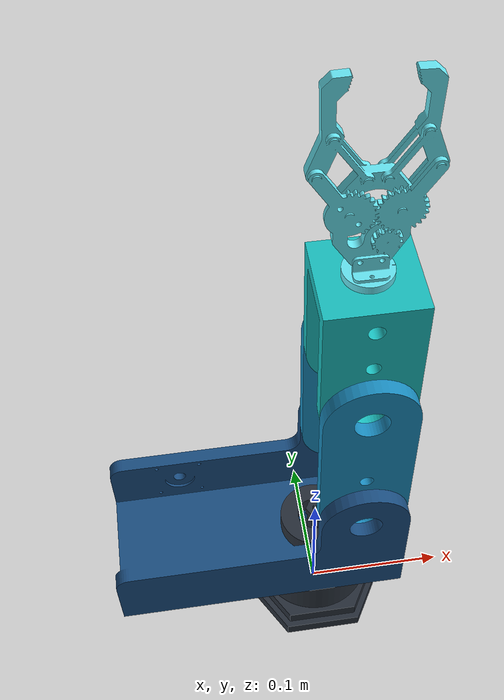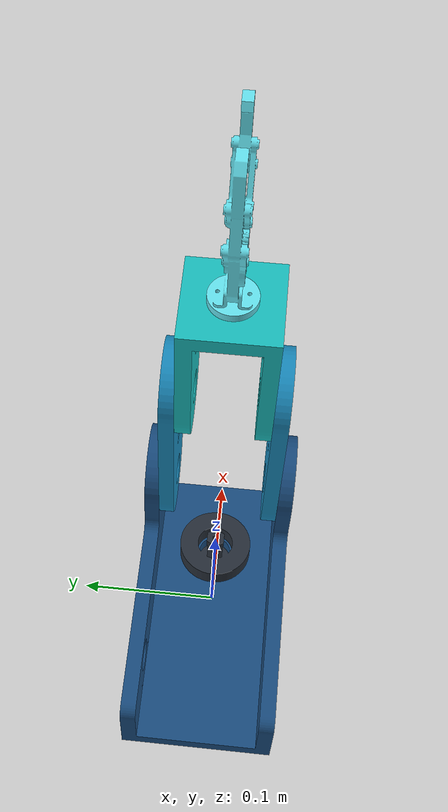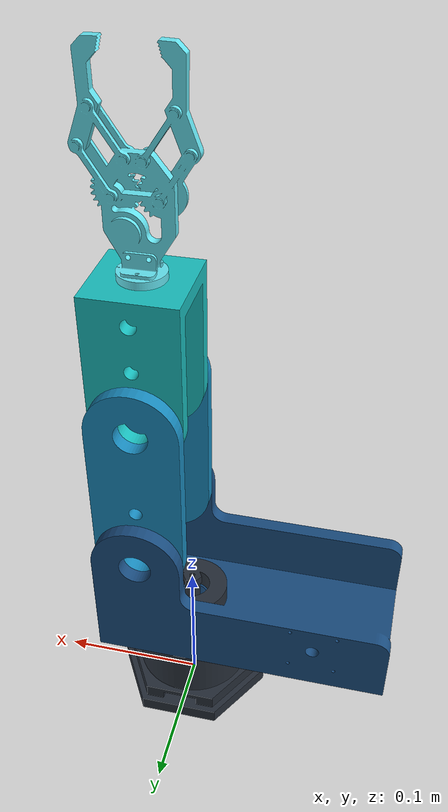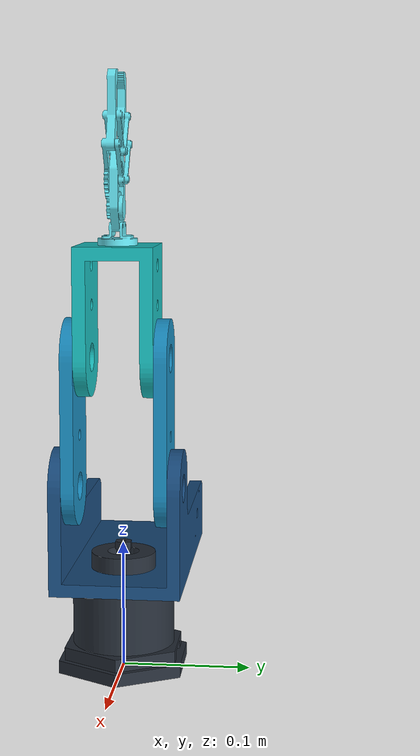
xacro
<?xml version="1.0"?>
<robot xmlns:xacro="http://www.ros.org/wiki/xacro" name="rrrr">
    <xacro:arg name="initial_positions_file" default="initial_positions.yaml" />

    <!-- Import rrrr urdf file -->
    <xacro:include filename="$(find rrrr)/urdf/rrrr.urdf" />

    <!-- Import control_xacro -->
    <xacro:include filename="rrrr.ros2_control.xacro" />

    <xacro:rrrr_ros2_control name="FakeSystem" initial_positions_file="$(arg initial_positions_file)"/>

</robot>

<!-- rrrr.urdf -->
<robot name="rrrr">

    <link name="world"/>

    <link name="base_link">
        <inertial>
            <origin xyz="0.01601016 -0.01294874 1.02923951" rpy="0.0 0.0 0.0"/>
            <mass value="0.58108498"/>
            <inertia ixx="0.00221093" ixy="0.0" ixz="0.0" iyy="0.00095158" iyz="-0.00020330" izz="0.00256205"/>
        </inertial>
        <visual>
            <origin xyz="0 0 0" rpy="0 0 0"/>
            <geometry>
                <mesh filename="package://rrrr/meshes/base_link.STL" scale="1 1 1"/>
            </geometry>
            <material name="Gris">
                <color rgba="0.15 0.18 0.22 1.0"/>
            </material>
        </visual>
        <collision>
            <origin xyz="0 0 0" rpy="0 0 0"/>
            <geometry>
                <mesh filename="package://rrrr/meshes/base_link.STL" scale="1 1 1"/>
            </geometry>
        </collision>
    </link>

    <joint name="world_to_base" type="fixed">
        <parent link="world"/>
        <child link="base_link"/>
        <origin xyz="0 0 0" rpy="0 0 0"/>
    </joint>

    <link name="link_1">
        <inertial>
            <origin xyz="0.00296154 0.00579816 1.02434988" rpy="0.0 0.0 0.0"/>
            <mass value="0.41520613"/>
            <inertia ixx="0.00172230" ixy="-0.00000380" ixz="0.00000042" iyy="0.00087982" iyz="0.00021009" izz="0.00205141"/>
        </inertial>
        <visual>
            <origin xyz="0.0 0.0 0.0" rpy="0.0 0.0 0.0"/>
            <geometry>
                <mesh filename="package://rrrr/meshes/link_1.STL" scale="1 1 1"/>
            </geometry>
            <material name="Azul">
                <color rgba="0.10 0.30 0.50 1.0"/>
            </material>
        </visual>
        <collision>
            <origin xyz="0.0 0.0 0.0" rpy="0.0 0.0 0.0"/>
            <geometry>
                <mesh filename="package://rrrr/meshes/link_1.STL" scale="1 1 1"/>
            </geometry>
        </collision>
    </link>

    <joint name="j1" type="revolute">
        <origin xyz="0.0 0.0 0.07" rpy="0 0 0"/>
        <parent link="base_link"/>
        <child link="link_1"/>
        <axis xyz="0.0 0.0 1"/>
        <limit lower="-3.14159265" upper="3.14159265" effort="10.0" velocity="1.0"/>
    </joint>

    <link name="link_2">
        <inertial>
            <origin xyz="-0.04925232 -0.01857965 0.97000000" rpy="0.0 0.0 0.0"/>
            <mass value="0.16007101"/>
            <inertia ixx="0.00048491" ixy="0.0" ixz="0.0" iyy="0.00024568" iyz="0.0" izz="0.00033574"/>
        </inertial>
        <visual>
            <origin xyz="0.0 0.0 0.0" rpy="0.0 0.0 0.0"/>
            <geometry>
                <mesh filename="package://rrrr/meshes/link_2.STL" scale="1 1 1"/>
            </geometry>
            <material name="Cian">
                <color rgba="0.10 0.55 0.75 1.0"/>
            </material>
        </visual>
        <collision>
            <origin xyz="0.0 0.0 0.0" rpy="0.0 0.0 0.0"/>
            <geometry>
                <mesh filename="package://rrrr/meshes/link_2.STL" scale="1 1 1"/>
            </geometry>
        </collision>
    </link>

    <joint name="j2" type="revolute">
        <origin xyz="0.025 0.0 0.08" rpy="1.5708 0.0 0.0"/>
        <parent link="link_1"/>
        <child link="link_2"/>
        <axis xyz="0.0 0.0 1.0"/>
        <limit lower="-1.0379" upper="0.4714" effort="10.0" velocity="1.0"/>
    </joint>

    <link name="link_3">
        <inertial>
            <origin xyz="-0.04189326 -0.02459975 0.98000000" rpy="0.0 0.0 0.0"/>
            <mass value="0.13607101"/>
            <inertia ixx="0.00027338" ixy="0.0" ixz="0.0" iyy="0.00012724" iyz="0.0" izz="0.00022826"/>
        </inertial>
        <visual>
            <origin xyz="0.0 0.0 0.0" rpy="0.0 0.0 0.0"/>
            <geometry>
                <mesh filename="package://rrrr/meshes/link_3.STL" scale="1 1 1"/>
            </geometry>
            <material name="Turquesa">
                <color rgba="0.10 0.75 0.75 1.0"/>
            </material>
        </visual>
        <collision>
            <origin xyz="0.0 0.0 0.0" rpy="0.0 0.0 0.0"/>
            <geometry>
                <mesh filename="package://rrrr/meshes/link_3.STL" scale="1 1 1"/>
            </geometry>
        </collision>
    </link>

    <joint name="j3" type="revolute">
        <origin xyz="0.0 0.1 0.0" rpy="0.0 0.0 0.0"/>
        <parent link="link_2"/>
        <child link="link_3"/>
        <axis xyz="0.0 0.0 1.0"/>
        <limit lower="-1.5708" upper="1.5708" effort="10.0" velocity="1.0"/>
    </joint>

    <link name="link_4">
        <inertial>
            <origin xyz="-0.00084870 -0.00100073 1.00483183" rpy="0.0 0.0 0.0"/>
            <mass value="0.10230176"/>
            <inertia ixx="0.00019657" ixy="0.0" ixz="0.00000012" iyy="0.00019510" iyz="-0.00000074" izz="0.00004901"/>
        </inertial>
        <visual>
            <origin xyz="0.0 0.0 0.0" rpy="0.0 0.0 0.0"/>
            <geometry>
                <mesh filename="package://rrrr/meshes/link_4.STL" scale="1 1 1"/>
            </geometry>
            <material name="Blanco">
                <color rgba="0.40 0.90 0.95 1.0"/>
            </material>
        </visual>
        <collision>
            <origin xyz="0.0 0.0 0.0" rpy="0.0 0.0 0.0"/>
            <geometry>
                <mesh filename="package://rrrr/meshes/link_4.STL" scale="1 1 1"/>
            </geometry>
        </collision>
    </link>

    <joint name="j4" type="revolute">
        <parent link="link_3"/>
        <child link="link_4"/>
        <origin xyz="0.0 0.085 0.0" rpy="-1.5708 1.5708 0.0"/>
        <axis xyz="0.0 0.0 1.0"/>
        <limit lower="-3.1416" upper="3.1416" effort="10.0" velocity="1.0"/>
    </joint>

    <link name="end_effector"/>
        <joint name="link_4_effector" type="fixed">
            <parent link="link_4"/>
            <child link="end_effector"/>
            <origin xyz="0.0 0.0 1.2266" rpy="0.0 0.0 0.0"/>
        </joint>

</robot>
